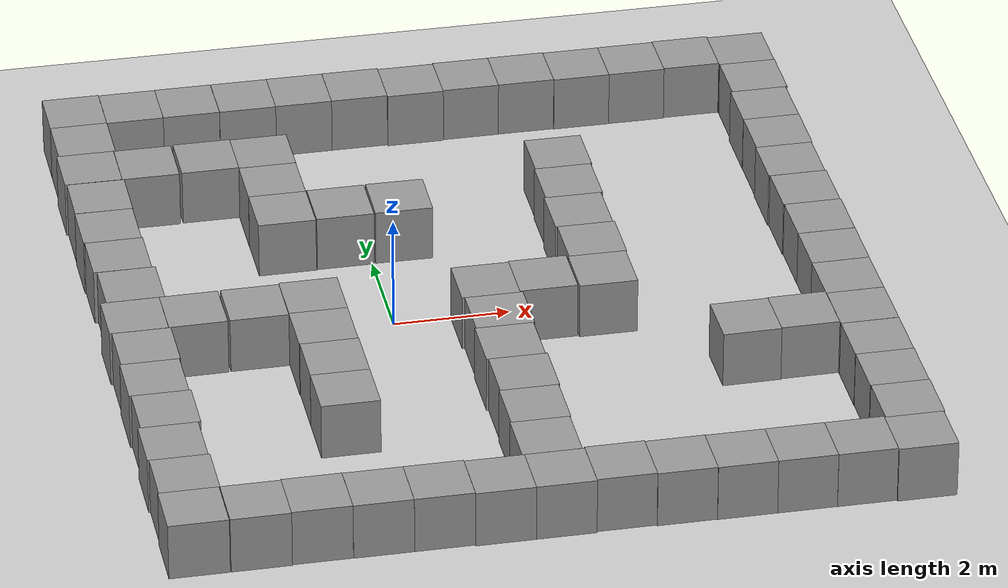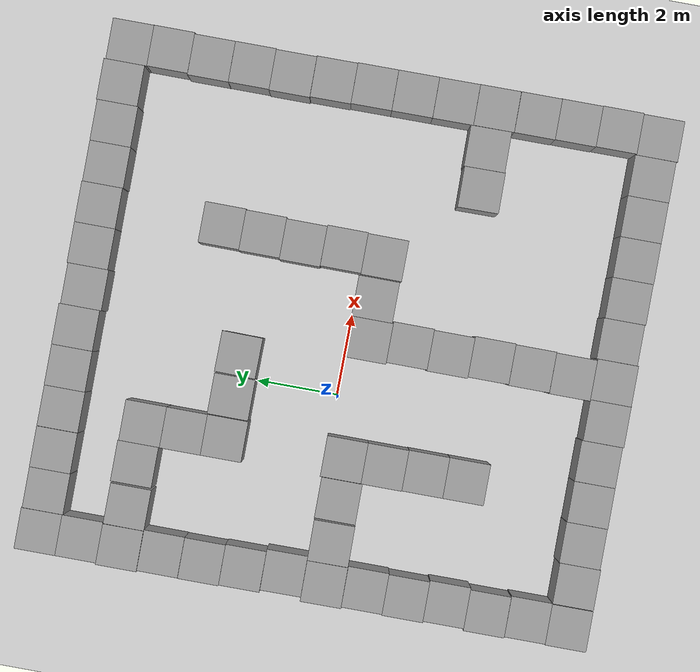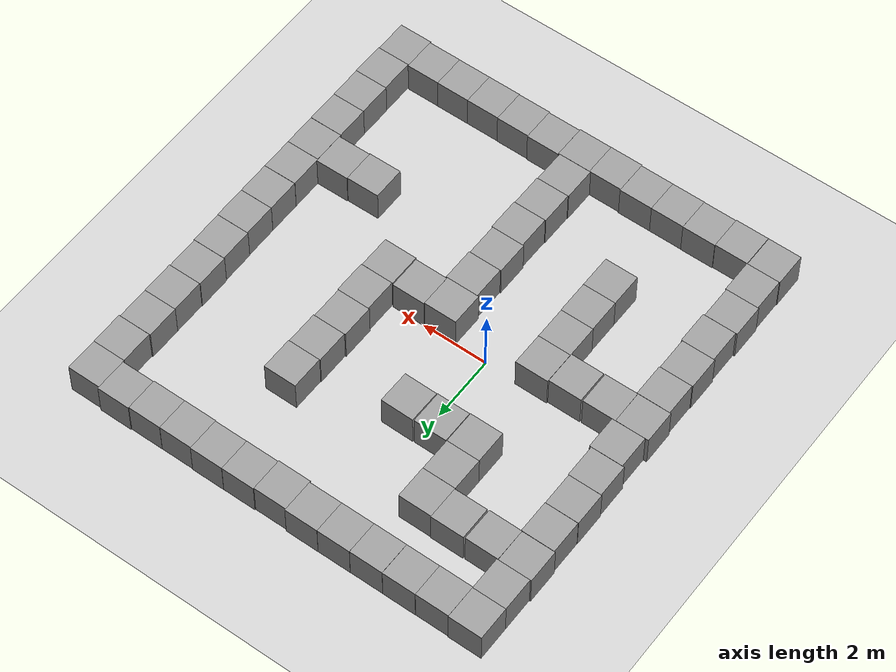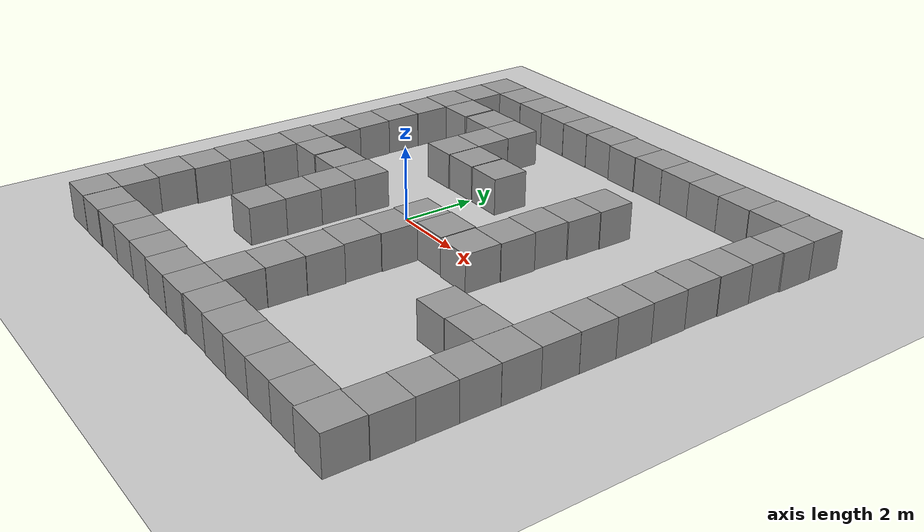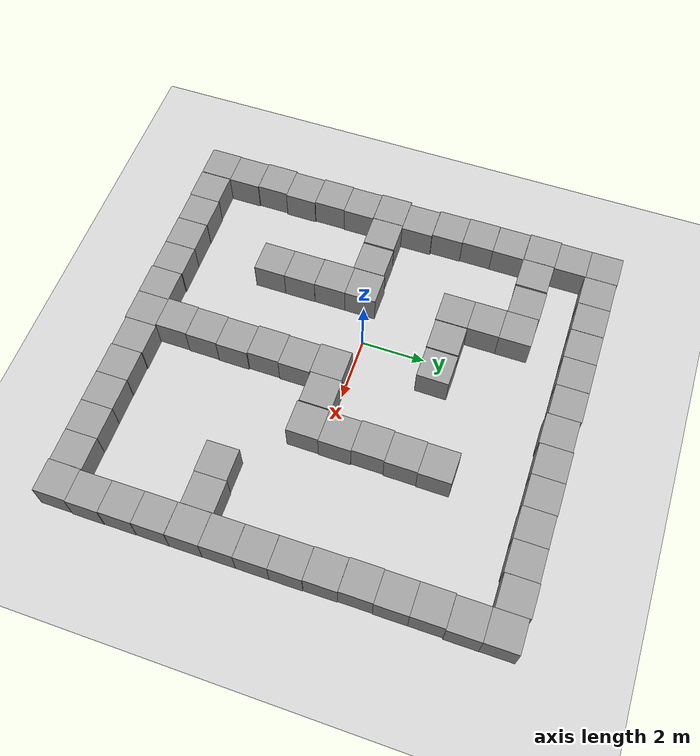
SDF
<sdf version="1.4">
 <world name="default">
  <light name="sun" type="directional">
   <pose>0 0 10 0 -0 0</pose>
   <diffuse>0.8 0.8 0.8 1</diffuse>
   <specular>0.2 0.2 0.2 1</specular>
   <attenuation>
    <range>1000</range>
    <constant>0.9</constant>
    <linear>0.01</linear>
    <quadratic>0.001</quadratic>
   </attenuation>
   <direction>-0.5 0.1 -0.9</direction>
  </light>
  <model name="ground_plane">
   <static>1</static>
   <link name="link">
    <collision name="collision">
     <geometry><plane><normal>0 0 1</normal><size>100 100</size></plane></geometry>
     <surface><friction><ode><mu>100</mu><mu2>50</mu2></ode></friction></surface>
    </collision>
    <visual name="visual">
     <cast_shadows>0</cast_shadows>
     <geometry><plane><normal>0 0 1</normal><size>100 100</size></plane></geometry>
     <material>
      <script><uri>file://media/materials/scripts/gazebo.material</uri><name>Gazebo/Grey</name></script>
     </material>
    </visual>
    <velocity_decay><linear>0</linear><angular>0</angular></velocity_decay>
   </link>
  </model>
  <physics type="ode">
   <max_step_size>0.001</max_step_size>
   <real_time_factor>1</real_time_factor>
   <real_time_update_rate>1000</real_time_update_rate>
   <gravity>0 0 -9.8</gravity>
  </physics>
  <scene><ambient>0.4 0.4 0.4 1</ambient><background>0.7 0.7 0.7 1</background><shadows>1</shadows></scene>
  <spherical_coordinates>
   <surface_model>EARTH_WGS84</surface_model>
   <latitude_deg>0</latitude_deg>
   <longitude_deg>0</longitude_deg>
   <elevation>0</elevation>
   <heading_deg>0</heading_deg>
  </spherical_coordinates>
  <model name="unit_box_1">
   <pose>-1.45938 -0.437154 0.5 -0 -0 -0.000545</pose>
   <link name="link">
    <inertial>
     <mass>1</mass>
     <inertia><ixx>1</ixx><ixy>0</ixy><ixz>0</ixz><iyy>1</iyy><iyz>0</iyz><izz>1</izz></inertia>
    </inertial>
    <collision name="collision"><geometry><box><size>1 1 1</size></box></geometry></collision>
    <visual name="visual">
     <geometry><box><size>1 1 1</size></box></geometry>
     <material>
      <script><uri>file://media/materials/scripts/gazebo.material</uri><name>Gazebo/Grey</name></script>
     </material>
    </visual>
    <velocity_decay><linear>0</linear><angular>0</angular></velocity_decay>
   </link>
   <static>0</static>
  </model>
  <model name="unit_box_2">
   <pose>-1.46122 -1.43715 0.5 0 0 -0.000546</pose>
   <link name="link">
    <inertial>
     <mass>1</mass>
     <inertia><ixx>1</ixx><ixy>0</ixy><ixz>0</ixz><iyy>1</iyy><iyz>0</iyz><izz>1</izz></inertia>
    </inertial>
    <collision name="collision"><geometry><box><size>1 1 1</size></box></geometry></collision>
    <visual name="visual">
     <geometry><box><size>1 1 1</size></box></geometry>
     <material>
      <script><uri>file://media/materials/scripts/gazebo.material</uri><name>Gazebo/Grey</name></script>
     </material>
    </visual>
    <velocity_decay><linear>0</linear><angular>0</angular></velocity_decay>
   </link>
   <static>0</static>
  </model>
  <model name="unit_box_3">
   <pose>-3.51755 4.50512 0.5 -0 -0 -0.004161</pose>
   <link name="link">
    <inertial>
     <mass>1</mass>
     <inertia><ixx>1</ixx><ixy>0</ixy><ixz>0</ixz><iyy>1</iyy><iyz>0</iyz><izz>1</izz></inertia>
    </inertial>
    <collision name="collision"><geometry><box><size>1 1 1</size></box></geometry></collision>
    <visual name="visual">
     <geometry><box><size>1 1 1</size></box></geometry>
     <material>
      <script><uri>file://media/materials/scripts/gazebo.material</uri><name>Gazebo/Grey</name></script>
     </material>
    </visual>
    <velocity_decay><linear>0</linear><angular>0</angular></velocity_decay>
   </link>
   <static>0</static>
  </model>
  <model name="unit_box_4">
   <pose>-1.47287 4.50008 0.5 0 0 -0.000285</pose>
   <link name="link">
    <inertial>
     <mass>1</mass>
     <inertia><ixx>1</ixx><ixy>0</ixy><ixz>0</ixz><iyy>1</iyy><iyz>0</iyz><izz>1</izz></inertia>
    </inertial>
    <collision name="collision"><geometry><box><size>1 1 1</size></box></geometry></collision>
    <visual name="visual">
     <geometry><box><size>1 1 1</size></box></geometry>
     <material>
      <script><uri>file://media/materials/scripts/gazebo.material</uri><name>Gazebo/Grey</name></script>
     </material>
    </visual>
    <velocity_decay><linear>0</linear><angular>0</angular></velocity_decay>
   </link>
   <static>0</static>
  </model>
  <model name="unit_box_7">
   <pose>1.48182 -0.514269 0.5 0 0 -0.002316</pose>
   <link name="link">
    <inertial>
     <mass>1</mass>
     <inertia><ixx>1</ixx><ixy>0</ixy><ixz>0</ixz><iyy>1</iyy><iyz>0</iyz><izz>1</izz></inertia>
    </inertial>
    <collision name="collision"><geometry><box><size>1 1 1</size></box></geometry></collision>
    <visual name="visual">
     <geometry><box><size>1 1 1</size></box></geometry>
     <material>
      <script><uri>file://media/materials/scripts/gazebo.material</uri><name>Gazebo/Grey</name></script>
     </material>
    </visual>
    <velocity_decay><linear>0</linear><angular>0</angular></velocity_decay>
   </link>
   <static>0</static>
  </model>
  <model name="unit_box_8">
   <pose>2.48193 -0.488791 0.5 0 0 -0.002218</pose>
   <link name="link">
    <inertial>
     <mass>1</mass>
     <inertia><ixx>1</ixx><ixy>0</ixy><ixz>0</ixz><iyy>1</iyy><iyz>0</iyz><izz>1</izz></inertia>
    </inertial>
    <collision name="collision"><geometry><box><size>1 1 1</size></box></geometry></collision>
    <visual name="visual">
     <geometry><box><size>1 1 1</size></box></geometry>
     <material>
      <script><uri>file://media/materials/scripts/gazebo.material</uri><name>Gazebo/Grey</name></script>
     </material>
    </visual>
    <velocity_decay><linear>0</linear><angular>0</angular></velocity_decay>
   </link>
   <static>0</static>
  </model>
  <model name="unit_box_9">
   <pose>-3.50531 -0.489342 0.5 0 -0 0.00801</pose>
   <link name="link">
    <inertial>
     <mass>1</mass>
     <inertia><ixx>1</ixx><ixy>0</ixy><ixz>0</ixz><iyy>1</iyy><iyz>0</iyz><izz>1</izz></inertia>
    </inertial>
    <collision name="collision"><geometry><box><size>1 1 1</size></box></geometry></collision>
    <visual name="visual">
     <geometry><box><size>1 1 1</size></box></geometry>
     <material>
      <script><uri>file://media/materials/scripts/gazebo.material</uri><name>Gazebo/Grey</name></script>
     </material>
    </visual>
    <velocity_decay><linear>0</linear><angular>0</angular></velocity_decay>
   </link>
   <static>0</static>
  </model>
  <model name="unit_box_10">
   <pose>1.52689 -1.51448 0.5 -0 -0 -0.002502</pose>
   <link name="link">
    <inertial>
     <mass>1</mass>
     <inertia><ixx>1</ixx><ixy>0</ixy><ixz>0</ixz><iyy>1</iyy><iyz>0</iyz><izz>1</izz></inertia>
    </inertial>
    <collision name="collision"><geometry><box><size>1 1 1</size></box></geometry></collision>
    <visual name="visual">
     <geometry><box><size>1 1 1</size></box></geometry>
     <material>
      <script><uri>file://media/materials/scripts/gazebo.material</uri><name>Gazebo/Grey</name></script>
     </material>
    </visual>
    <velocity_decay><linear>0</linear><angular>0</angular></velocity_decay>
   </link>
   <static>0</static>
  </model>
  <model name="unit_box_11">
   <pose>1.50042 -2.51447 0.5 0 0 -0.002399</pose>
   <link name="link">
    <inertial>
     <mass>1</mass>
     <inertia><ixx>1</ixx><ixy>0</ixy><ixz>0</ixz><iyy>1</iyy><iyz>0</iyz><izz>1</izz></inertia>
    </inertial>
    <collision name="collision"><geometry><box><size>1 1 1</size></box></geometry></collision>
    <visual name="visual">
     <geometry><box><size>1 1 1</size></box></geometry>
     <material>
      <script><uri>file://media/materials/scripts/gazebo.material</uri><name>Gazebo/Grey</name></script>
     </material>
    </visual>
    <velocity_decay><linear>0</linear><angular>0</angular></velocity_decay>
   </link>
   <static>0</static>
  </model>
  <model name="unit_box_13">
   <pose>1.53358 -3.51459 0.5 0 -0 -0.002319</pose>
   <link name="link">
    <inertial>
     <mass>1</mass>
     <inertia><ixx>1</ixx><ixy>0</ixy><ixz>0</ixz><iyy>1</iyy><iyz>0</iyz><izz>1</izz></inertia>
    </inertial>
    <collision name="collision"><geometry><box><size>1 1 1</size></box></geometry></collision>
    <visual name="visual">
     <geometry><box><size>1 1 1</size></box></geometry>
     <material>
      <script><uri>file://media/materials/scripts/gazebo.material</uri><name>Gazebo/Grey</name></script>
     </material>
    </visual>
    <velocity_decay><linear>0</linear><angular>0</angular></velocity_decay>
   </link>
   <static>0</static>
  </model>
  <model name="unit_box_14">
   <pose>1.52882 -6.5151 0.5 0 -0 -0.001302</pose>
   <link name="link">
    <inertial>
     <mass>1</mass>
     <inertia><ixx>1</ixx><ixy>0</ixy><ixz>0</ixz><iyy>1</iyy><iyz>0</iyz><izz>1</izz></inertia>
    </inertial>
    <collision name="collision"><geometry><box><size>1 1 1</size></box></geometry></collision>
    <visual name="visual">
     <geometry><box><size>1 1 1</size></box></geometry>
     <material>
      <script><uri>file://media/materials/scripts/gazebo.material</uri><name>Gazebo/Grey</name></script>
     </material>
    </visual>
    <velocity_decay><linear>0</linear><angular>0</angular></velocity_decay>
   </link>
   <static>0</static>
  </model>
  <model name="unit_box_15">
   <pose>0.528819 -6.51641 0.5 0 0 -0.001302</pose>
   <link name="link">
    <inertial>
     <mass>1</mass>
     <inertia><ixx>1</ixx><ixy>0</ixy><ixz>0</ixz><iyy>1</iyy><iyz>0</iyz><izz>1</izz></inertia>
    </inertial>
    <collision name="collision"><geometry><box><size>1 1 1</size></box></geometry></collision>
    <visual name="visual">
     <geometry><box><size>1 1 1</size></box></geometry>
     <material>
      <script><uri>file://media/materials/scripts/gazebo.material</uri><name>Gazebo/Grey</name></script>
     </material>
    </visual>
    <velocity_decay><linear>0</linear><angular>0</angular></velocity_decay>
   </link>
   <static>0</static>
  </model>
  <model name="unit_box_16">
   <pose>1.51208 -4.51458 0.5 -0 -0 -0.002255</pose>
   <link name="link">
    <inertial>
     <mass>1</mass>
     <inertia><ixx>1</ixx><ixy>0</ixy><ixz>0</ixz><iyy>1</iyy><iyz>0</iyz><izz>1</izz></inertia>
    </inertial>
    <collision name="collision"><geometry><box><size>1 1 1</size></box></geometry></collision>
    <visual name="visual">
     <geometry><box><size>1 1 1</size></box></geometry>
     <material>
      <script><uri>file://media/materials/scripts/gazebo.material</uri><name>Gazebo/Grey</name></script>
     </material>
    </visual>
    <velocity_decay><linear>0</linear><angular>0</angular></velocity_decay>
   </link>
   <static>0</static>
  </model>
  <model name="unit_box_19">
   <pose>-1.4774 3.49997 0.5 -0 -0 -6.5e-05</pose>
   <link name="link">
    <inertial>
     <mass>1</mass>
     <inertia><ixx>1</ixx><ixy>0</ixy><ixz>0</ixz><iyy>1</iyy><iyz>0</iyz><izz>1</izz></inertia>
    </inertial>
    <collision name="collision"><geometry><box><size>1 1 1</size></box></geometry></collision>
    <visual name="visual">
     <geometry><box><size>1 1 1</size></box></geometry>
     <material>
      <script><uri>file://media/materials/scripts/gazebo.material</uri><name>Gazebo/Grey</name></script>
     </material>
    </visual>
    <velocity_decay><linear>0</linear><angular>0</angular></velocity_decay>
   </link>
   <static>0</static>
  </model>
  <model name="unit_box_20">
   <pose>-1.47526 2.49993 0.5 0 0 -9e-05</pose>
   <link name="link">
    <inertial>
     <mass>1</mass>
     <inertia><ixx>1</ixx><ixy>0</ixy><ixz>0</ixz><iyy>1</iyy><iyz>0</iyz><izz>1</izz></inertia>
    </inertial>
    <collision name="collision"><geometry><box><size>1 1 1</size></box></geometry></collision>
    <visual name="visual">
     <geometry><box><size>1 1 1</size></box></geometry>
     <material>
      <script><uri>file://media/materials/scripts/gazebo.material</uri><name>Gazebo/Grey</name></script>
     </material>
    </visual>
    <velocity_decay><linear>0</linear><angular>0</angular></velocity_decay>
   </link>
   <static>0</static>
  </model>
  <model name="unit_box_21">
   <pose>-0.457933 2.51441 0.5 0 -0 -0.000648</pose>
   <link name="link">
    <inertial>
     <mass>1</mass>
     <inertia><ixx>1</ixx><ixy>0</ixy><ixz>0</ixz><iyy>1</iyy><iyz>0</iyz><izz>1</izz></inertia>
    </inertial>
    <collision name="collision"><geometry><box><size>1 1 1</size></box></geometry></collision>
    <visual name="visual">
     <geometry><box><size>1 1 1</size></box></geometry>
     <material>
      <script><uri>file://media/materials/scripts/gazebo.material</uri><name>Gazebo/Grey</name></script>
     </material>
    </visual>
    <velocity_decay><linear>0</linear><angular>0</angular></velocity_decay>
   </link>
   <static>0</static>
  </model>
  <model name="unit_box_26">
   <pose>0.570549 2.52047 0.5 -0 -0 -0.011987</pose>
   <link name="link">
    <inertial>
     <mass>1</mass>
     <inertia><ixx>1</ixx><ixy>0</ixy><ixz>0</ixz><iyy>1</iyy><iyz>0</iyz><izz>1</izz></inertia>
    </inertial>
    <collision name="collision"><geometry><box><size>1 1 1</size></box></geometry></collision>
    <visual name="visual">
     <geometry><box><size>1 1 1</size></box></geometry>
     <material>
      <script><uri>file://media/materials/scripts/gazebo.material</uri><name>Gazebo/Grey</name></script>
     </material>
    </visual>
    <velocity_decay><linear>0</linear><angular>0</angular></velocity_decay>
   </link>
   <static>0</static>
  </model>
  <model name="unit_box_27">
   <pose>3.50789 -0.527351 0.5 0 0 -0.003833</pose>
   <link name="link">
    <inertial>
     <mass>1</mass>
     <inertia><ixx>1</ixx><ixy>0</ixy><ixz>0</ixz><iyy>1</iyy><iyz>0</iyz><izz>1</izz></inertia>
    </inertial>
    <collision name="collision"><geometry><box><size>1 1 1</size></box></geometry></collision>
    <visual name="visual">
     <geometry><box><size>1 1 1</size></box></geometry>
     <material>
      <script><uri>file://media/materials/scripts/gazebo.material</uri><name>Gazebo/Grey</name></script>
     </material>
    </visual>
    <velocity_decay><linear>0</linear><angular>0</angular></velocity_decay>
   </link>
   <static>0</static>
  </model>
  <model name="unit_box_28">
   <pose>-2.46495 -0.477005 0.5 0 -0 -9.3e-05</pose>
   <link name="link">
    <inertial>
     <mass>1</mass>
     <inertia><ixx>1</ixx><ixy>0</ixy><ixz>0</ixz><iyy>1</iyy><iyz>0</iyz><izz>1</izz></inertia>
    </inertial>
    <collision name="collision"><geometry><box><size>1 1 1</size></box></geometry></collision>
    <visual name="visual">
     <geometry><box><size>1 1 1</size></box></geometry>
     <material>
      <script><uri>file://media/materials/scripts/gazebo.material</uri><name>Gazebo/Grey</name></script>
     </material>
    </visual>
    <velocity_decay><linear>0</linear><angular>0</angular></velocity_decay>
   </link>
   <static>0</static>
  </model>
  <model name="unit_box_33">
   <pose>-1.45157 -2.43718 0.5 -0 -0 -0.000547</pose>
   <link name="link">
    <inertial>
     <mass>1</mass>
     <inertia><ixx>1</ixx><ixy>0</ixy><ixz>0</ixz><iyy>1</iyy><iyz>0</iyz><izz>1</izz></inertia>
    </inertial>
    <collision name="collision"><geometry><box><size>1 1 1</size></box></geometry></collision>
    <visual name="visual">
     <geometry><box><size>1 1 1</size></box></geometry>
     <material>
      <script><uri>file://media/materials/scripts/gazebo.material</uri><name>Gazebo/Grey</name></script>
     </material>
    </visual>
    <velocity_decay><linear>0</linear><angular>0</angular></velocity_decay>
   </link>
   <static>0</static>
  </model>
  <model name="unit_box_34">
   <pose>-1.45161 -3.4372 0.5 0 0 -0.000543</pose>
   <link name="link">
    <inertial>
     <mass>1</mass>
     <inertia><ixx>1</ixx><ixy>0</ixy><ixz>0</ixz><iyy>1</iyy><iyz>0</iyz><izz>1</izz></inertia>
    </inertial>
    <collision name="collision"><geometry><box><size>1 1 1</size></box></geometry></collision>
    <visual name="visual">
     <geometry><box><size>1 1 1</size></box></geometry>
     <material>
      <script><uri>file://media/materials/scripts/gazebo.material</uri><name>Gazebo/Grey</name></script>
     </material>
    </visual>
    <velocity_decay><linear>0</linear><angular>0</angular></velocity_decay>
   </link>
   <static>0</static>
  </model>
  <model name="unit_box_35">
   <pose>-1.48166 6.4982 0.5 0 -0 -0.001227</pose>
   <link name="link">
    <inertial>
     <mass>1</mass>
     <inertia><ixx>1</ixx><ixy>0</ixy><ixz>0</ixz><iyy>1</iyy><iyz>0</iyz><izz>1</izz></inertia>
    </inertial>
    <collision name="collision"><geometry><box><size>1 1 1</size></box></geometry></collision>
    <visual name="visual">
     <geometry><box><size>1 1 1</size></box></geometry>
     <material>
      <script><uri>file://media/materials/scripts/gazebo.material</uri><name>Gazebo/Grey</name></script>
     </material>
    </visual>
    <velocity_decay><linear>0</linear><angular>0</angular></velocity_decay>
   </link>
   <static>0</static>
  </model>
  <model name="unit_box_36">
   <pose>3.56395 3.47273 0.5 0 0 -0.004068</pose>
   <link name="link">
    <inertial>
     <mass>1</mass>
     <inertia><ixx>1</ixx><ixy>0</ixy><ixz>0</ixz><iyy>1</iyy><iyz>0</iyz><izz>1</izz></inertia>
    </inertial>
    <collision name="collision"><geometry><box><size>1 1 1</size></box></geometry></collision>
    <visual name="visual">
     <geometry><box><size>1 1 1</size></box></geometry>
     <material>
      <script><uri>file://media/materials/scripts/gazebo.material</uri><name>Gazebo/Grey</name></script>
     </material>
    </visual>
    <velocity_decay><linear>0</linear><angular>0</angular></velocity_decay>
   </link>
   <static>0</static>
  </model>
  <model name="unit_box_37">
   <pose>3.54048 2.47279 0.5 0 0 -0.004052</pose>
   <link name="link">
    <inertial>
     <mass>1</mass>
     <inertia><ixx>1</ixx><ixy>0</ixy><ixz>0</ixz><iyy>1</iyy><iyz>0</iyz><izz>1</izz></inertia>
    </inertial>
    <collision name="collision"><geometry><box><size>1 1 1</size></box></geometry></collision>
    <visual name="visual">
     <geometry><box><size>1 1 1</size></box></geometry>
     <material>
      <script><uri>file://media/materials/scripts/gazebo.material</uri><name>Gazebo/Grey</name></script>
     </material>
    </visual>
    <velocity_decay><linear>0</linear><angular>0</angular></velocity_decay>
   </link>
   <static>0</static>
  </model>
  <model name="unit_box_38">
   <pose>3.5053 1.47279 0.5 0 0 -0.003909</pose>
   <link name="link">
    <inertial>
     <mass>1</mass>
     <inertia><ixx>1</ixx><ixy>0</ixy><ixz>0</ixz><iyy>1</iyy><iyz>0</iyz><izz>1</izz></inertia>
    </inertial>
    <collision name="collision"><geometry><box><size>1 1 1</size></box></geometry></collision>
    <visual name="visual">
     <geometry><box><size>1 1 1</size></box></geometry>
     <material>
      <script><uri>file://media/materials/scripts/gazebo.material</uri><name>Gazebo/Grey</name></script>
     </material>
    </visual>
    <velocity_decay><linear>0</linear><angular>0</angular></velocity_decay>
   </link>
   <static>0</static>
  </model>
  <model name="unit_box_39">
   <pose>3.53164 0.47261 0.5 0 -0 -0.00385</pose>
   <link name="link">
    <inertial>
     <mass>1</mass>
     <inertia><ixx>1</ixx><ixy>0</ixy><ixz>0</ixz><iyy>1</iyy><iyz>0</iyz><izz>1</izz></inertia>
    </inertial>
    <collision name="collision"><geometry><box><size>1 1 1</size></box></geometry></collision>
    <visual name="visual">
     <geometry><box><size>1 1 1</size></box></geometry>
     <material>
      <script><uri>file://media/materials/scripts/gazebo.material</uri><name>Gazebo/Grey</name></script>
     </material>
    </visual>
    <velocity_decay><linear>0</linear><angular>0</angular></velocity_decay>
   </link>
   <static>0</static>
  </model>
  <model name="unit_box_40">
   <pose>5.52832 -2.52609 0.5 0 -0 0.008493</pose>
   <link name="link">
    <inertial>
     <mass>1</mass>
     <inertia><ixx>1</ixx><ixy>0</ixy><ixz>0</ixz><iyy>1</iyy><iyz>0</iyz><izz>1</izz></inertia>
    </inertial>
    <collision name="collision"><geometry><box><size>1 1 1</size></box></geometry></collision>
    <visual name="visual">
     <geometry><box><size>1 1 1</size></box></geometry>
     <material>
      <script><uri>file://media/materials/scripts/gazebo.material</uri><name>Gazebo/Grey</name></script>
     </material>
    </visual>
    <velocity_decay><linear>0</linear><angular>0</angular></velocity_decay>
   </link>
   <static>0</static>
  </model>
  <model name="unit_box_41">
   <pose>6.52815 -2.5002 0.5 0 -0 0.008495</pose>
   <link name="link">
    <inertial>
     <mass>1</mass>
     <inertia><ixx>1</ixx><ixy>0</ixy><ixz>0</ixz><iyy>1</iyy><iyz>0</iyz><izz>1</izz></inertia>
    </inertial>
    <collision name="collision"><geometry><box><size>1 1 1</size></box></geometry></collision>
    <visual name="visual">
     <geometry><box><size>1 1 1</size></box></geometry>
     <material>
      <script><uri>file://media/materials/scripts/gazebo.material</uri><name>Gazebo/Grey</name></script>
     </material>
    </visual>
    <velocity_decay><linear>0</linear><angular>0</angular></velocity_decay>
   </link>
   <static>0</static>
  </model>
  <model name="unit_box_42">
   <pose>1.49183 -5.51489 0.5 -0 -0 -0.001546</pose>
   <link name="link">
    <inertial>
     <mass>1</mass>
     <inertia><ixx>1</ixx><ixy>0</ixy><ixz>0</ixz><iyy>1</iyy><iyz>0</iyz><izz>1</izz></inertia>
    </inertial>
    <collision name="collision"><geometry><box><size>1 1 1</size></box></geometry></collision>
    <visual name="visual">
     <geometry><box><size>1 1 1</size></box></geometry>
     <material>
      <script><uri>file://media/materials/scripts/gazebo.material</uri><name>Gazebo/Grey</name></script>
     </material>
    </visual>
    <velocity_decay><linear>0</linear><angular>0</angular></velocity_decay>
   </link>
   <static>0</static>
  </model>
  <model name="unit_box_43">
   <pose>2.52931 -6.48382 0.5 0 -0 -0.000356</pose>
   <link name="link">
    <inertial>
     <mass>1</mass>
     <inertia><ixx>1</ixx><ixy>0</ixy><ixz>0</ixz><iyy>1</iyy><iyz>0</iyz><izz>1</izz></inertia>
    </inertial>
    <collision name="collision"><geometry><box><size>1 1 1</size></box></geometry></collision>
    <visual name="visual">
     <geometry><box><size>1 1 1</size></box></geometry>
     <material>
      <script><uri>file://media/materials/scripts/gazebo.material</uri><name>Gazebo/Grey</name></script>
     </material>
    </visual>
    <velocity_decay><linear>0</linear><angular>0</angular></velocity_decay>
   </link>
   <static>0</static>
  </model>
  <model name="unit_box_44">
   <pose>3.52931 -6.50731 0.5 0 -0 -0.000358</pose>
   <link name="link">
    <inertial>
     <mass>1</mass>
     <inertia><ixx>1</ixx><ixy>0</ixy><ixz>0</ixz><iyy>1</iyy><iyz>0</iyz><izz>1</izz></inertia>
    </inertial>
    <collision name="collision"><geometry><box><size>1 1 1</size></box></geometry></collision>
    <visual name="visual">
     <geometry><box><size>1 1 1</size></box></geometry>
     <material>
      <script><uri>file://media/materials/scripts/gazebo.material</uri><name>Gazebo/Grey</name></script>
     </material>
    </visual>
    <velocity_decay><linear>0</linear><angular>0</angular></velocity_decay>
   </link>
   <static>0</static>
  </model>
  <model name="unit_box_45">
   <pose>4.5293 -6.51677 0.5 0 -0 -0.000359</pose>
   <link name="link">
    <inertial>
     <mass>1</mass>
     <inertia><ixx>1</ixx><ixy>0</ixy><ixz>0</ixz><iyy>1</iyy><iyz>0</iyz><izz>1</izz></inertia>
    </inertial>
    <collision name="collision"><geometry><box><size>1 1 1</size></box></geometry></collision>
    <visual name="visual">
     <geometry><box><size>1 1 1</size></box></geometry>
     <material>
      <script><uri>file://media/materials/scripts/gazebo.material</uri><name>Gazebo/Grey</name></script>
     </material>
    </visual>
    <velocity_decay><linear>0</linear><angular>0</angular></velocity_decay>
   </link>
   <static>0</static>
  </model>
  <model name="unit_box_46">
   <pose>5.52931 -6.51774 0.5 0 0 -0.000377</pose>
   <link name="link">
    <inertial>
     <mass>1</mass>
     <inertia><ixx>1</ixx><ixy>0</ixy><ixz>0</ixz><iyy>1</iyy><iyz>0</iyz><izz>1</izz></inertia>
    </inertial>
    <collision name="collision"><geometry><box><size>1 1 1</size></box></geometry></collision>
    <visual name="visual">
     <geometry><box><size>1 1 1</size></box></geometry>
     <material>
      <script><uri>file://media/materials/scripts/gazebo.material</uri><name>Gazebo/Grey</name></script>
     </material>
    </visual>
    <velocity_decay><linear>0</linear><angular>0</angular></velocity_decay>
   </link>
   <static>0</static>
  </model>
  <model name="unit_box_47">
   <pose>6.52932 -6.52193 0.5 0 0 -0.000382</pose>
   <link name="link">
    <inertial>
     <mass>1</mass>
     <inertia><ixx>1</ixx><ixy>0</ixy><ixz>0</ixz><iyy>1</iyy><iyz>0</iyz><izz>1</izz></inertia>
    </inertial>
    <collision name="collision"><geometry><box><size>1 1 1</size></box></geometry></collision>
    <visual name="visual">
     <geometry><box><size>1 1 1</size></box></geometry>
     <material>
      <script><uri>file://media/materials/scripts/gazebo.material</uri><name>Gazebo/Grey</name></script>
     </material>
    </visual>
    <velocity_decay><linear>0</linear><angular>0</angular></velocity_decay>
   </link>
   <static>0</static>
  </model>
  <model name="unit_box_48">
   <pose>7.52964 -6.55372 0.5 0 -0 0.000184</pose>
   <link name="link">
    <inertial>
     <mass>1</mass>
     <inertia><ixx>1</ixx><ixy>0</ixy><ixz>0</ixz><iyy>1</iyy><iyz>0</iyz><izz>1</izz></inertia>
    </inertial>
    <collision name="collision"><geometry><box><size>1 1 1</size></box></geometry></collision>
    <visual name="visual">
     <geometry><box><size>1 1 1</size></box></geometry>
     <material>
      <script><uri>file://media/materials/scripts/gazebo.material</uri><name>Gazebo/Grey</name></script>
     </material>
    </visual>
    <velocity_decay><linear>0</linear><angular>0</angular></velocity_decay>
   </link>
   <static>0</static>
  </model>
  <model name="unit_box_49">
   <pose>7.54973 -5.5537 0.5 0 -0 0.000183</pose>
   <link name="link">
    <inertial>
     <mass>1</mass>
     <inertia><ixx>1</ixx><ixy>0</ixy><ixz>0</ixz><iyy>1</iyy><iyz>0</iyz><izz>1</izz></inertia>
    </inertial>
    <collision name="collision"><geometry><box><size>1 1 1</size></box></geometry></collision>
    <visual name="visual">
     <geometry><box><size>1 1 1</size></box></geometry>
     <material>
      <script><uri>file://media/materials/scripts/gazebo.material</uri><name>Gazebo/Grey</name></script>
     </material>
    </visual>
    <velocity_decay><linear>0</linear><angular>0</angular></velocity_decay>
   </link>
   <static>0</static>
  </model>
  <model name="unit_box_50">
   <pose>7.54012 -4.55369 0.5 0 -0 0.0002</pose>
   <link name="link">
    <inertial>
     <mass>1</mass>
     <inertia><ixx>1</ixx><ixy>0</ixy><ixz>0</ixz><iyy>1</iyy><iyz>0</iyz><izz>1</izz></inertia>
    </inertial>
    <collision name="collision"><geometry><box><size>1 1 1</size></box></geometry></collision>
    <visual name="visual">
     <geometry><box><size>1 1 1</size></box></geometry>
     <material>
      <script><uri>file://media/materials/scripts/gazebo.material</uri><name>Gazebo/Grey</name></script>
     </material>
    </visual>
    <velocity_decay><linear>0</linear><angular>0</angular></velocity_decay>
   </link>
   <static>0</static>
  </model>
  <model name="unit_box_51">
   <pose>7.53426 -3.55346 0.5 0 -0 0.000669</pose>
   <link name="link">
    <inertial>
     <mass>1</mass>
     <inertia><ixx>1</ixx><ixy>0</ixy><ixz>0</ixz><iyy>1</iyy><iyz>0</iyz><izz>1</izz></inertia>
    </inertial>
    <collision name="collision"><geometry><box><size>1 1 1</size></box></geometry></collision>
    <visual name="visual">
     <geometry><box><size>1 1 1</size></box></geometry>
     <material>
      <script><uri>file://media/materials/scripts/gazebo.material</uri><name>Gazebo/Grey</name></script>
     </material>
    </visual>
    <velocity_decay><linear>0</linear><angular>0</angular></velocity_decay>
   </link>
   <static>0</static>
  </model>
  <model name="unit_box_52">
   <pose>7.5305 -2.55153 0.5 0 -0 0.004541</pose>
   <link name="link">
    <inertial>
     <mass>1</mass>
     <inertia><ixx>1</ixx><ixy>0</ixy><ixz>0</ixz><iyy>1</iyy><iyz>0</iyz><izz>1</izz></inertia>
    </inertial>
    <collision name="collision"><geometry><box><size>1 1 1</size></box></geometry></collision>
    <visual name="visual">
     <geometry><box><size>1 1 1</size></box></geometry>
     <material>
      <script><uri>file://media/materials/scripts/gazebo.material</uri><name>Gazebo/Grey</name></script>
     </material>
    </visual>
    <velocity_decay><linear>0</linear><angular>0</angular></velocity_decay>
   </link>
   <static>0</static>
  </model>
  <model name="unit_box_53">
   <pose>7.52178 -1.55116 0.5 0 -0 0.005171</pose>
   <link name="link">
    <inertial>
     <mass>1</mass>
     <inertia><ixx>1</ixx><ixy>0</ixy><ixz>0</ixz><iyy>1</iyy><iyz>0</iyz><izz>1</izz></inertia>
    </inertial>
    <collision name="collision"><geometry><box><size>1 1 1</size></box></geometry></collision>
    <visual name="visual">
     <geometry><box><size>1 1 1</size></box></geometry>
     <material>
      <script><uri>file://media/materials/scripts/gazebo.material</uri><name>Gazebo/Grey</name></script>
     </material>
    </visual>
    <velocity_decay><linear>0</linear><angular>0</angular></velocity_decay>
   </link>
   <static>0</static>
  </model>
  <model name="unit_box_54">
   <pose>7.51956 -0.550623 0.5 0 -0 0.004086</pose>
   <link name="link">
    <inertial>
     <mass>1</mass>
     <inertia><ixx>1</ixx><ixy>0</ixy><ixz>0</ixz><iyy>1</iyy><iyz>0</iyz><izz>1</izz></inertia>
    </inertial>
    <collision name="collision"><geometry><box><size>1 1 1</size></box></geometry></collision>
    <visual name="visual">
     <geometry><box><size>1 1 1</size></box></geometry>
     <material>
      <script><uri>file://media/materials/scripts/gazebo.material</uri><name>Gazebo/Grey</name></script>
     </material>
    </visual>
    <velocity_decay><linear>0</linear><angular>0</angular></velocity_decay>
   </link>
   <static>0</static>
  </model>
  <model name="unit_box_55">
   <pose>-0.471376 -6.48824 0.5 -0 -0 -0.000845</pose>
   <link name="link">
    <inertial>
     <mass>1</mass>
     <inertia><ixx>1</ixx><ixy>0</ixy><ixz>0</ixz><iyy>1</iyy><iyz>0</iyz><izz>1</izz></inertia>
    </inertial>
    <collision name="collision"><geometry><box><size>1 1 1</size></box></geometry></collision>
    <visual name="visual">
     <geometry><box><size>1 1 1</size></box></geometry>
     <material>
      <script><uri>file://media/materials/scripts/gazebo.material</uri><name>Gazebo/Grey</name></script>
     </material>
    </visual>
    <velocity_decay><linear>0</linear><angular>0</angular></velocity_decay>
   </link>
   <static>0</static>
  </model>
  <model name="unit_box_56">
   <pose>-1.47162 -6.48731 0.5 0 -0 -0.000363</pose>
   <link name="link">
    <inertial>
     <mass>1</mass>
     <inertia><ixx>1</ixx><ixy>0</ixy><ixz>0</ixz><iyy>1</iyy><iyz>0</iyz><izz>1</izz></inertia>
    </inertial>
    <collision name="collision"><geometry><box><size>1 1 1</size></box></geometry></collision>
    <visual name="visual">
     <geometry><box><size>1 1 1</size></box></geometry>
     <material>
      <script><uri>file://media/materials/scripts/gazebo.material</uri><name>Gazebo/Grey</name></script>
     </material>
    </visual>
    <velocity_decay><linear>0</linear><angular>0</angular></velocity_decay>
   </link>
   <static>0</static>
  </model>
  <model name="unit_box_57">
   <pose>-2.47184 -6.48024 0.5 0 -0 9.2e-05</pose>
   <link name="link">
    <inertial>
     <mass>1</mass>
     <inertia><ixx>1</ixx><ixy>0</ixy><ixz>0</ixz><iyy>1</iyy><iyz>0</iyz><izz>1</izz></inertia>
    </inertial>
    <collision name="collision"><geometry><box><size>1 1 1</size></box></geometry></collision>
    <visual name="visual">
     <geometry><box><size>1 1 1</size></box></geometry>
     <material>
      <script><uri>file://media/materials/scripts/gazebo.material</uri><name>Gazebo/Grey</name></script>
     </material>
    </visual>
    <velocity_decay><linear>0</linear><angular>0</angular></velocity_decay>
   </link>
   <static>0</static>
  </model>
  <model name="unit_box_58">
   <pose>-3.47193 -6.4991 0.5 0 -0 0.000261</pose>
   <link name="link">
    <inertial>
     <mass>1</mass>
     <inertia><ixx>1</ixx><ixy>0</ixy><ixz>0</ixz><iyy>1</iyy><iyz>0</iyz><izz>1</izz></inertia>
    </inertial>
    <collision name="collision"><geometry><box><size>1 1 1</size></box></geometry></collision>
    <visual name="visual">
     <geometry><box><size>1 1 1</size></box></geometry>
     <material>
      <script><uri>file://media/materials/scripts/gazebo.material</uri><name>Gazebo/Grey</name></script>
     </material>
    </visual>
    <velocity_decay><linear>0</linear><angular>0</angular></velocity_decay>
   </link>
   <static>0</static>
  </model>
  <model name="unit_box_59">
   <pose>-4.48366 -6.49957 0.5 0 -0 0.000635</pose>
   <link name="link">
    <inertial>
     <mass>1</mass>
     <inertia><ixx>1</ixx><ixy>0</ixy><ixz>0</ixz><iyy>1</iyy><iyz>0</iyz><izz>1</izz></inertia>
    </inertial>
    <collision name="collision"><geometry><box><size>1 1 1</size></box></geometry></collision>
    <visual name="visual">
     <geometry><box><size>1 1 1</size></box></geometry>
     <material>
      <script><uri>file://media/materials/scripts/gazebo.material</uri><name>Gazebo/Grey</name></script>
     </material>
    </visual>
    <velocity_decay><linear>0</linear><angular>0</angular></velocity_decay>
   </link>
   <static>0</static>
  </model>
  <model name="unit_box_60">
   <pose>-4.46741 -5.49955 0.5 0 -0 0.000652</pose>
   <link name="link">
    <inertial>
     <mass>1</mass>
     <inertia><ixx>1</ixx><ixy>0</ixy><ixz>0</ixz><iyy>1</iyy><iyz>0</iyz><izz>1</izz></inertia>
    </inertial>
    <collision name="collision"><geometry><box><size>1 1 1</size></box></geometry></collision>
    <visual name="visual">
     <geometry><box><size>1 1 1</size></box></geometry>
     <material>
      <script><uri>file://media/materials/scripts/gazebo.material</uri><name>Gazebo/Grey</name></script>
     </material>
    </visual>
    <velocity_decay><linear>0</linear><angular>0</angular></velocity_decay>
   </link>
   <static>0</static>
  </model>
  <model name="unit_box_61">
   <pose>-4.49675 -4.49949 0.5 0 -0 0.000803</pose>
   <link name="link">
    <inertial>
     <mass>1</mass>
     <inertia><ixx>1</ixx><ixy>0</ixy><ixz>0</ixz><iyy>1</iyy><iyz>0</iyz><izz>1</izz></inertia>
    </inertial>
    <collision name="collision"><geometry><box><size>1 1 1</size></box></geometry></collision>
    <visual name="visual">
     <geometry><box><size>1 1 1</size></box></geometry>
     <material>
      <script><uri>file://media/materials/scripts/gazebo.material</uri><name>Gazebo/Grey</name></script>
     </material>
    </visual>
    <velocity_decay><linear>0</linear><angular>0</angular></velocity_decay>
   </link>
   <static>0</static>
  </model>
  <model name="unit_box_62">
   <pose>-4.45118 -3.49941 0.5 0 -0 0.000898</pose>
   <link name="link">
    <inertial>
     <mass>1</mass>
     <inertia><ixx>1</ixx><ixy>0</ixy><ixz>0</ixz><iyy>1</iyy><iyz>0</iyz><izz>1</izz></inertia>
    </inertial>
    <collision name="collision"><geometry><box><size>1 1 1</size></box></geometry></collision>
    <visual name="visual">
     <geometry><box><size>1 1 1</size></box></geometry>
     <material>
      <script><uri>file://media/materials/scripts/gazebo.material</uri><name>Gazebo/Grey</name></script>
     </material>
    </visual>
    <velocity_decay><linear>0</linear><angular>0</angular></velocity_decay>
   </link>
   <static>0</static>
  </model>
  <model name="unit_box_63">
   <pose>-4.48656 -2.49942 0.5 0 -0 0.000892</pose>
   <link name="link">
    <inertial>
     <mass>1</mass>
     <inertia><ixx>1</ixx><ixy>0</ixy><ixz>0</ixz><iyy>1</iyy><iyz>0</iyz><izz>1</izz></inertia>
    </inertial>
    <collision name="collision"><geometry><box><size>1 1 1</size></box></geometry></collision>
    <visual name="visual">
     <geometry><box><size>1 1 1</size></box></geometry>
     <material>
      <script><uri>file://media/materials/scripts/gazebo.material</uri><name>Gazebo/Grey</name></script>
     </material>
    </visual>
    <velocity_decay><linear>0</linear><angular>0</angular></velocity_decay>
   </link>
   <static>0</static>
  </model>
  <model name="unit_box_64">
   <pose>-4.46703 -1.49939 0.5 0 -0 0.000885</pose>
   <link name="link">
    <inertial>
     <mass>1</mass>
     <inertia><ixx>1</ixx><ixy>0</ixy><ixz>0</ixz><iyy>1</iyy><iyz>0</iyz><izz>1</izz></inertia>
    </inertial>
    <collision name="collision"><geometry><box><size>1 1 1</size></box></geometry></collision>
    <visual name="visual">
     <geometry><box><size>1 1 1</size></box></geometry>
     <material>
      <script><uri>file://media/materials/scripts/gazebo.material</uri><name>Gazebo/Grey</name></script>
     </material>
    </visual>
    <velocity_decay><linear>0</linear><angular>0</angular></velocity_decay>
   </link>
   <static>0</static>
  </model>
  <model name="unit_box_65">
   <pose>-4.50684 -0.49758 0.5 0 -0 0.004878</pose>
   <link name="link">
    <inertial>
     <mass>1</mass>
     <inertia><ixx>1</ixx><ixy>0</ixy><ixz>0</ixz><iyy>1</iyy><iyz>0</iyz><izz>1</izz></inertia>
    </inertial>
    <collision name="collision"><geometry><box><size>1 1 1</size></box></geometry></collision>
    <visual name="visual">
     <geometry><box><size>1 1 1</size></box></geometry>
     <material>
      <script><uri>file://media/materials/scripts/gazebo.material</uri><name>Gazebo/Grey</name></script>
     </material>
    </visual>
    <velocity_decay><linear>0</linear><angular>0</angular></velocity_decay>
   </link>
   <static>0</static>
  </model>
  <model name="unit_box_66">
   <pose>-4.41102 0.504431 0.5 0 -0 0.006044</pose>
   <link name="link">
    <inertial>
     <mass>1</mass>
     <inertia><ixx>1</ixx><ixy>0</ixy><ixz>0</ixz><iyy>1</iyy><iyz>0</iyz><izz>1</izz></inertia>
    </inertial>
    <collision name="collision"><geometry><box><size>1 1 1</size></box></geometry></collision>
    <visual name="visual">
     <geometry><box><size>1 1 1</size></box></geometry>
     <material>
      <script><uri>file://media/materials/scripts/gazebo.material</uri><name>Gazebo/Grey</name></script>
     </material>
    </visual>
    <velocity_decay><linear>0</linear><angular>0</angular></velocity_decay>
   </link>
   <static>0</static>
  </model>
  <model name="unit_box_67">
   <pose>-4.47502 1.50602 0.5 0 -0 0.002152</pose>
   <link name="link">
    <inertial>
     <mass>1</mass>
     <inertia><ixx>1</ixx><ixy>0</ixy><ixz>0</ixz><iyy>1</iyy><iyz>0</iyz><izz>1</izz></inertia>
    </inertial>
    <collision name="collision"><geometry><box><size>1 1 1</size></box></geometry></collision>
    <visual name="visual">
     <geometry><box><size>1 1 1</size></box></geometry>
     <material>
      <script><uri>file://media/materials/scripts/gazebo.material</uri><name>Gazebo/Grey</name></script>
     </material>
    </visual>
    <velocity_decay><linear>0</linear><angular>0</angular></velocity_decay>
   </link>
   <static>0</static>
  </model>
  <model name="unit_box_68">
   <pose>-4.49633 2.5063 0.5 0 -0 0.001538</pose>
   <link name="link">
    <inertial>
     <mass>1</mass>
     <inertia><ixx>1</ixx><ixy>0</ixy><ixz>0</ixz><iyy>1</iyy><iyz>0</iyz><izz>1</izz></inertia>
    </inertial>
    <collision name="collision"><geometry><box><size>1 1 1</size></box></geometry></collision>
    <visual name="visual">
     <geometry><box><size>1 1 1</size></box></geometry>
     <material>
      <script><uri>file://media/materials/scripts/gazebo.material</uri><name>Gazebo/Grey</name></script>
     </material>
    </visual>
    <velocity_decay><linear>0</linear><angular>0</angular></velocity_decay>
   </link>
   <static>0</static>
  </model>
  <model name="unit_box_69">
   <pose>-4.48876 3.50822 0.5 0 0 -0.002343</pose>
   <link name="link">
    <inertial>
     <mass>1</mass>
     <inertia><ixx>1</ixx><ixy>0</ixy><ixz>0</ixz><iyy>1</iyy><iyz>0</iyz><izz>1</izz></inertia>
    </inertial>
    <collision name="collision"><geometry><box><size>1 1 1</size></box></geometry></collision>
    <visual name="visual">
     <geometry><box><size>1 1 1</size></box></geometry>
     <material>
      <script><uri>file://media/materials/scripts/gazebo.material</uri><name>Gazebo/Grey</name></script>
     </material>
    </visual>
    <velocity_decay><linear>0</linear><angular>0</angular></velocity_decay>
   </link>
   <static>0</static>
  </model>
  <model name="unit_box_70">
   <pose>-4.52021 4.51315 0.5 0 -0 0.001164</pose>
   <link name="link">
    <inertial>
     <mass>1</mass>
     <inertia><ixx>1</ixx><ixy>0</ixy><ixz>0</ixz><iyy>1</iyy><iyz>0</iyz><izz>1</izz></inertia>
    </inertial>
    <collision name="collision"><geometry><box><size>1 1 1</size></box></geometry></collision>
    <visual name="visual">
     <geometry><box><size>1 1 1</size></box></geometry>
     <material>
      <script><uri>file://media/materials/scripts/gazebo.material</uri><name>Gazebo/Grey</name></script>
     </material>
    </visual>
    <velocity_decay><linear>0</linear><angular>0</angular></velocity_decay>
   </link>
   <static>0</static>
  </model>
  <model name="unit_box_71">
   <pose>-4.48521 5.51325 0.5 0 -0 0.001231</pose>
   <link name="link">
    <inertial>
     <mass>1</mass>
     <inertia><ixx>1</ixx><ixy>0</ixy><ixz>0</ixz><iyy>1</iyy><iyz>0</iyz><izz>1</izz></inertia>
    </inertial>
    <collision name="collision"><geometry><box><size>1 1 1</size></box></geometry></collision>
    <visual name="visual">
     <geometry><box><size>1 1 1</size></box></geometry>
     <material>
      <script><uri>file://media/materials/scripts/gazebo.material</uri><name>Gazebo/Grey</name></script>
     </material>
    </visual>
    <velocity_decay><linear>0</linear><angular>0</angular></velocity_decay>
   </link>
   <static>0</static>
  </model>
  <model name="unit_box_72">
   <pose>-4.48655 6.51333 0.5 0 -0 0.001313</pose>
   <link name="link">
    <inertial>
     <mass>1</mass>
     <inertia><ixx>1</ixx><ixy>0</ixy><ixz>0</ixz><iyy>1</iyy><iyz>0</iyz><izz>1</izz></inertia>
    </inertial>
    <collision name="collision"><geometry><box><size>1 1 1</size></box></geometry></collision>
    <visual name="visual">
     <geometry><box><size>1 1 1</size></box></geometry>
     <material>
      <script><uri>file://media/materials/scripts/gazebo.material</uri><name>Gazebo/Grey</name></script>
     </material>
    </visual>
    <velocity_decay><linear>0</linear><angular>0</angular></velocity_decay>
   </link>
   <static>0</static>
  </model>
  <model name="unit_box_73">
   <pose>-3.4852 6.49521 0.5 0 -0 0.00011</pose>
   <link name="link">
    <inertial>
     <mass>1</mass>
     <inertia><ixx>1</ixx><ixy>0</ixy><ixz>0</ixz><iyy>1</iyy><iyz>0</iyz><izz>1</izz></inertia>
    </inertial>
    <collision name="collision"><geometry><box><size>1 1 1</size></box></geometry></collision>
    <visual name="visual">
     <geometry><box><size>1 1 1</size></box></geometry>
     <material>
      <script><uri>file://media/materials/scripts/gazebo.material</uri><name>Gazebo/Grey</name></script>
     </material>
    </visual>
    <velocity_decay><linear>0</linear><angular>0</angular></velocity_decay>
   </link>
   <static>0</static>
  </model>
  <model name="unit_box_74">
   <pose>-2.48507 6.49995 0.5 0 -0 0.000269</pose>
   <link name="link">
    <inertial>
     <mass>1</mass>
     <inertia><ixx>1</ixx><ixy>0</ixy><ixz>0</ixz><iyy>1</iyy><iyz>0</iyz><izz>1</izz></inertia>
    </inertial>
    <collision name="collision"><geometry><box><size>1 1 1</size></box></geometry></collision>
    <visual name="visual">
     <geometry><box><size>1 1 1</size></box></geometry>
     <material>
      <script><uri>file://media/materials/scripts/gazebo.material</uri><name>Gazebo/Grey</name></script>
     </material>
    </visual>
    <velocity_decay><linear>0</linear><angular>0</angular></velocity_decay>
   </link>
   <static>0</static>
  </model>
  <model name="unit_box_75">
   <pose>-2.47289 4.5183 0.5 0 0 -0.000313</pose>
   <link name="link">
    <inertial>
     <mass>1</mass>
     <inertia><ixx>1</ixx><ixy>0</ixy><ixz>0</ixz><iyy>1</iyy><iyz>0</iyz><izz>1</izz></inertia>
    </inertial>
    <collision name="collision"><geometry><box><size>1 1 1</size></box></geometry></collision>
    <visual name="visual">
     <geometry><box><size>1 1 1</size></box></geometry>
     <material>
      <script><uri>file://media/materials/scripts/gazebo.material</uri><name>Gazebo/Grey</name></script>
     </material>
    </visual>
    <velocity_decay><linear>0</linear><angular>0</angular></velocity_decay>
   </link>
   <static>0</static>
  </model>
  <model name="unit_box_76">
   <pose>-0.481557 6.50236 0.5 0 -0 -0.001259</pose>
   <link name="link">
    <inertial>
     <mass>1</mass>
     <inertia><ixx>1</ixx><ixy>0</ixy><ixz>0</ixz><iyy>1</iyy><iyz>0</iyz><izz>1</izz></inertia>
    </inertial>
    <collision name="collision"><geometry><box><size>1 1 1</size></box></geometry></collision>
    <visual name="visual">
     <geometry><box><size>1 1 1</size></box></geometry>
     <material>
      <script><uri>file://media/materials/scripts/gazebo.material</uri><name>Gazebo/Grey</name></script>
     </material>
    </visual>
    <velocity_decay><linear>0</linear><angular>0</angular></velocity_decay>
   </link>
   <static>0</static>
  </model>
  <model name="unit_box_77">
   <pose>0.518563 6.50445 0.5 0 0 -0.001254</pose>
   <link name="link">
    <inertial>
     <mass>1</mass>
     <inertia><ixx>1</ixx><ixy>0</ixy><ixz>0</ixz><iyy>1</iyy><iyz>0</iyz><izz>1</izz></inertia>
    </inertial>
    <collision name="collision"><geometry><box><size>1 1 1</size></box></geometry></collision>
    <visual name="visual">
     <geometry><box><size>1 1 1</size></box></geometry>
     <material>
      <script><uri>file://media/materials/scripts/gazebo.material</uri><name>Gazebo/Grey</name></script>
     </material>
    </visual>
    <velocity_decay><linear>0</linear><angular>0</angular></velocity_decay>
   </link>
   <static>0</static>
  </model>
  <model name="unit_box_78">
   <pose>1.51856 6.46711 0.5 0 0 -0.00118</pose>
   <link name="link">
    <inertial>
     <mass>1</mass>
     <inertia><ixx>1</ixx><ixy>0</ixy><ixz>0</ixz><iyy>1</iyy><iyz>0</iyz><izz>1</izz></inertia>
    </inertial>
    <collision name="collision"><geometry><box><size>1 1 1</size></box></geometry></collision>
    <visual name="visual">
     <geometry><box><size>1 1 1</size></box></geometry>
     <material>
      <script><uri>file://media/materials/scripts/gazebo.material</uri><name>Gazebo/Grey</name></script>
     </material>
    </visual>
    <velocity_decay><linear>0</linear><angular>0</angular></velocity_decay>
   </link>
   <static>0</static>
  </model>
  <model name="unit_box_79">
   <pose>2.51862 6.49016 0.5 0 0 -0.001165</pose>
   <link name="link">
    <inertial>
     <mass>1</mass>
     <inertia><ixx>1</ixx><ixy>0</ixy><ixz>0</ixz><iyy>1</iyy><iyz>0</iyz><izz>1</izz></inertia>
    </inertial>
    <collision name="collision"><geometry><box><size>1 1 1</size></box></geometry></collision>
    <visual name="visual">
     <geometry><box><size>1 1 1</size></box></geometry>
     <material>
      <script><uri>file://media/materials/scripts/gazebo.material</uri><name>Gazebo/Grey</name></script>
     </material>
    </visual>
    <velocity_decay><linear>0</linear><angular>0</angular></velocity_decay>
   </link>
   <static>0</static>
  </model>
  <model name="unit_box_80">
   <pose>3.51864 6.49279 0.5 0 0 -0.00115</pose>
   <link name="link">
    <inertial>
     <mass>1</mass>
     <inertia><ixx>1</ixx><ixy>0</ixy><ixz>0</ixz><iyy>1</iyy><iyz>0</iyz><izz>1</izz></inertia>
    </inertial>
    <collision name="collision"><geometry><box><size>1 1 1</size></box></geometry></collision>
    <visual name="visual">
     <geometry><box><size>1 1 1</size></box></geometry>
     <material>
      <script><uri>file://media/materials/scripts/gazebo.material</uri><name>Gazebo/Grey</name></script>
     </material>
    </visual>
    <velocity_decay><linear>0</linear><angular>0</angular></velocity_decay>
   </link>
   <static>0</static>
  </model>
  <model name="unit_box_81">
   <pose>4.51865 6.47674 0.5 -0 -0 -0.001084</pose>
   <link name="link">
    <inertial>
     <mass>1</mass>
     <inertia><ixx>1</ixx><ixy>0</ixy><ixz>0</ixz><iyy>1</iyy><iyz>0</iyz><izz>1</izz></inertia>
    </inertial>
    <collision name="collision"><geometry><box><size>1 1 1</size></box></geometry></collision>
    <visual name="visual">
     <geometry><box><size>1 1 1</size></box></geometry>
     <material>
      <script><uri>file://media/materials/scripts/gazebo.material</uri><name>Gazebo/Grey</name></script>
     </material>
    </visual>
    <velocity_decay><linear>0</linear><angular>0</angular></velocity_decay>
   </link>
   <static>0</static>
  </model>
  <model name="unit_box_82">
   <pose>5.51866 6.47915 0.5 0 -0 -0.001078</pose>
   <link name="link">
    <inertial>
     <mass>1</mass>
     <inertia><ixx>1</ixx><ixy>0</ixy><ixz>0</ixz><iyy>1</iyy><iyz>0</iyz><izz>1</izz></inertia>
    </inertial>
    <collision name="collision"><geometry><box><size>1 1 1</size></box></geometry></collision>
    <visual name="visual">
     <geometry><box><size>1 1 1</size></box></geometry>
     <material>
      <script><uri>file://media/materials/scripts/gazebo.material</uri><name>Gazebo/Grey</name></script>
     </material>
    </visual>
    <velocity_decay><linear>0</linear><angular>0</angular></velocity_decay>
   </link>
   <static>0</static>
  </model>
  <model name="unit_box_83">
   <pose>6.51874 6.49978 0.5 -0 -0 -0.000968</pose>
   <link name="link">
    <inertial>
     <mass>1</mass>
     <inertia><ixx>1</ixx><ixy>0</ixy><ixz>0</ixz><iyy>1</iyy><iyz>0</iyz><izz>1</izz></inertia>
    </inertial>
    <collision name="collision"><geometry><box><size>1 1 1</size></box></geometry></collision>
    <visual name="visual">
     <geometry><box><size>1 1 1</size></box></geometry>
     <material>
      <script><uri>file://media/materials/scripts/gazebo.material</uri><name>Gazebo/Grey</name></script>
     </material>
    </visual>
    <velocity_decay><linear>0</linear><angular>0</angular></velocity_decay>
   </link>
   <static>0</static>
  </model>
  <model name="unit_box_84">
   <pose>7.51611 0.44982 0.5 0 -0 0.003197</pose>
   <link name="link">
    <inertial>
     <mass>1</mass>
     <inertia><ixx>1</ixx><ixy>0</ixy><ixz>0</ixz><iyy>1</iyy><iyz>0</iyz><izz>1</izz></inertia>
    </inertial>
    <collision name="collision"><geometry><box><size>1 1 1</size></box></geometry></collision>
    <visual name="visual">
     <geometry><box><size>1 1 1</size></box></geometry>
     <material>
      <script><uri>file://media/materials/scripts/gazebo.material</uri><name>Gazebo/Grey</name></script>
     </material>
    </visual>
    <velocity_decay><linear>0</linear><angular>0</angular></velocity_decay>
   </link>
   <static>0</static>
  </model>
  <model name="unit_box_85">
   <pose>7.49913 1.44998 0.5 0 -0 0.002783</pose>
   <link name="link">
    <inertial>
     <mass>1</mass>
     <inertia><ixx>1</ixx><ixy>0</ixy><ixz>0</ixz><iyy>1</iyy><iyz>0</iyz><izz>1</izz></inertia>
    </inertial>
    <collision name="collision"><geometry><box><size>1 1 1</size></box></geometry></collision>
    <visual name="visual">
     <geometry><box><size>1 1 1</size></box></geometry>
     <material>
      <script><uri>file://media/materials/scripts/gazebo.material</uri><name>Gazebo/Grey</name></script>
     </material>
    </visual>
    <velocity_decay><linear>0</linear><angular>0</angular></velocity_decay>
   </link>
   <static>0</static>
  </model>
  <model name="unit_box_86">
   <pose>7.47724 2.45085 0.5 0 -0 0.000968</pose>
   <link name="link">
    <inertial>
     <mass>1</mass>
     <inertia><ixx>1</ixx><ixy>0</ixy><ixz>0</ixz><iyy>1</iyy><iyz>0</iyz><izz>1</izz></inertia>
    </inertial>
    <collision name="collision"><geometry><box><size>1 1 1</size></box></geometry></collision>
    <visual name="visual">
     <geometry><box><size>1 1 1</size></box></geometry>
     <material>
      <script><uri>file://media/materials/scripts/gazebo.material</uri><name>Gazebo/Grey</name></script>
     </material>
    </visual>
    <velocity_decay><linear>0</linear><angular>0</angular></velocity_decay>
   </link>
   <static>0</static>
  </model>
  <model name="unit_box_87">
   <pose>7.49246 3.4511 0.5 0 -0 0.000507</pose>
   <link name="link">
    <inertial>
     <mass>1</mass>
     <inertia><ixx>1</ixx><ixy>0</ixy><ixz>0</ixz><iyy>1</iyy><iyz>0</iyz><izz>1</izz></inertia>
    </inertial>
    <collision name="collision"><geometry><box><size>1 1 1</size></box></geometry></collision>
    <visual name="visual">
     <geometry><box><size>1 1 1</size></box></geometry>
     <material>
      <script><uri>file://media/materials/scripts/gazebo.material</uri><name>Gazebo/Grey</name></script>
     </material>
    </visual>
    <velocity_decay><linear>0</linear><angular>0</angular></velocity_decay>
   </link>
   <static>0</static>
  </model>
  <model name="unit_box_88">
   <pose>7.48931 4.4512 0.5 0 -0 0.000306</pose>
   <link name="link">
    <inertial>
     <mass>1</mass>
     <inertia><ixx>1</ixx><ixy>0</ixy><ixz>0</ixz><iyy>1</iyy><iyz>0</iyz><izz>1</izz></inertia>
    </inertial>
    <collision name="collision"><geometry><box><size>1 1 1</size></box></geometry></collision>
    <visual name="visual">
     <geometry><box><size>1 1 1</size></box></geometry>
     <material>
      <script><uri>file://media/materials/scripts/gazebo.material</uri><name>Gazebo/Grey</name></script>
     </material>
    </visual>
    <velocity_decay><linear>0</linear><angular>0</angular></velocity_decay>
   </link>
   <static>0</static>
  </model>
  <model name="unit_box_89">
   <pose>7.52271 5.45177 0.5 0 0 -0.000875</pose>
   <link name="link">
    <inertial>
     <mass>1</mass>
     <inertia><ixx>1</ixx><ixy>0</ixy><ixz>0</ixz><iyy>1</iyy><iyz>0</iyz><izz>1</izz></inertia>
    </inertial>
    <collision name="collision"><geometry><box><size>1 1 1</size></box></geometry></collision>
    <visual name="visual">
     <geometry><box><size>1 1 1</size></box></geometry>
     <material>
      <script><uri>file://media/materials/scripts/gazebo.material</uri><name>Gazebo/Grey</name></script>
     </material>
    </visual>
    <velocity_decay><linear>0</linear><angular>0</angular></velocity_decay>
   </link>
   <static>0</static>
  </model>
  <model name="unit_box_90">
   <pose>7.51874 6.45178 0.5 0 0 -0.000879</pose>
   <link name="link">
    <inertial>
     <mass>1</mass>
     <inertia><ixx>1</ixx><ixy>0</ixy><ixz>0</ixz><iyy>1</iyy><iyz>0</iyz><izz>1</izz></inertia>
    </inertial>
    <collision name="collision"><geometry><box><size>1 1 1</size></box></geometry></collision>
    <visual name="visual">
     <geometry><box><size>1 1 1</size></box></geometry>
     <material>
      <script><uri>file://media/materials/scripts/gazebo.material</uri><name>Gazebo/Grey</name></script>
     </material>
    </visual>
    <velocity_decay><linear>0</linear><angular>0</angular></velocity_decay>
   </link>
   <static>0</static>
  </model>
 </world>
</sdf>
